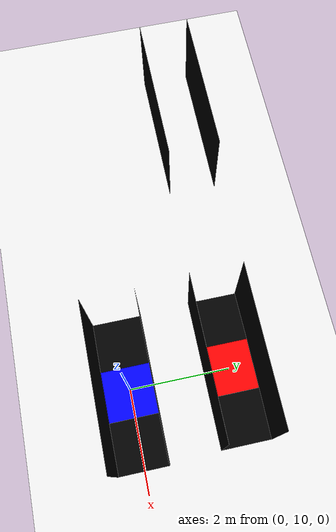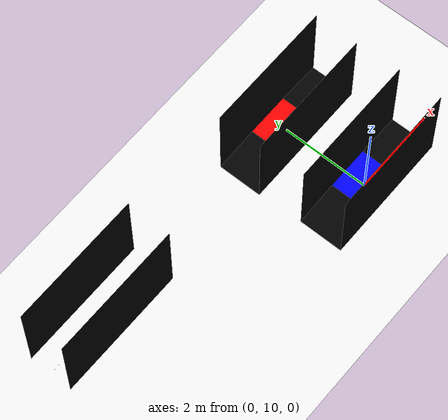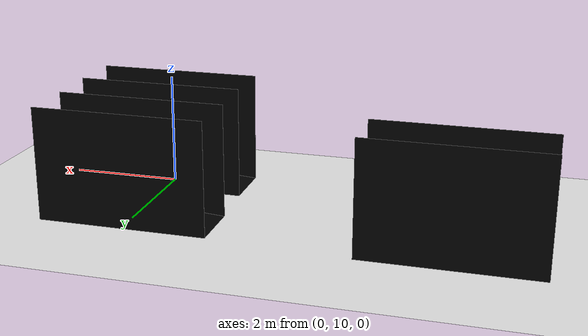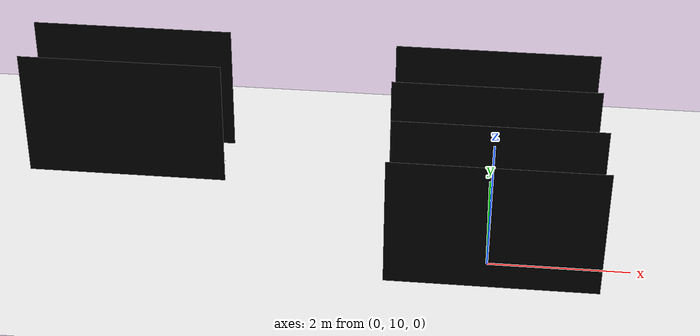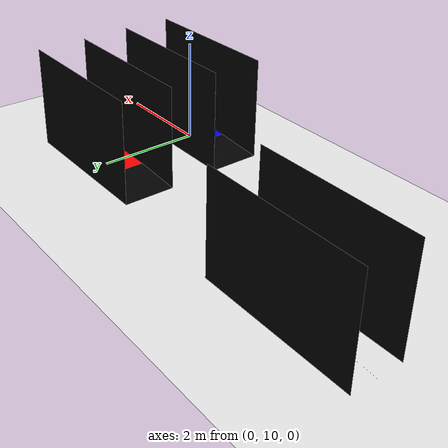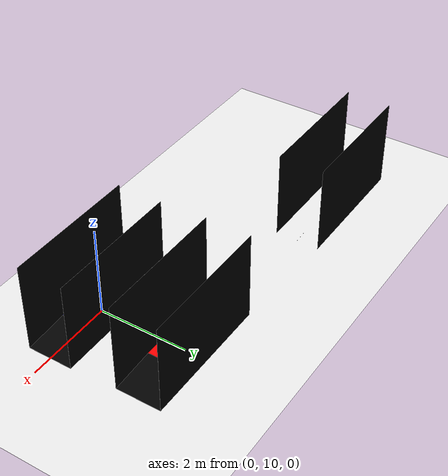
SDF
<sdf version="1.7">
 <world name="default">
  <model name="ground_plane">
   <static>1</static>
   <link name="link">
    <collision name="collision">
     <geometry><plane><normal>0 0 1</normal><size>100 100</size></plane></geometry>
     <surface>
      <contact><collide_bitmask>65535</collide_bitmask></contact>
      <friction><ode><mu>100</mu><mu2>50</mu2></ode></friction>
     </surface>
    </collision>
    <visual name="visual">
     <cast_shadows>0</cast_shadows>
     <geometry><plane><normal>0 0 1</normal><size>100 100</size></plane></geometry>
     <material>
      <script><uri>file://media/materials/scripts/gazebo.material</uri><name>Gazebo/WhiteColor</name></script>
     </material>
    </visual>
   </link>
  </model>
  <model name="icy_ramp">
   <static>1</static>
   <pose>0.062511 9.98815 0 0 -0 0</pose>
   <link name="left_side">
    <pose>0 -0.5 1 0 -0 0</pose>
    <collision name="collision">
     <geometry><box><size>3 0.001 2</size></box></geometry>
     <surface>
      <friction>
       <ode><mu>0.05</mu><mu2>0.05</mu2><fdir1>0 0 0</fdir1><slip1>0</slip1><slip2>0</slip2></ode>
      </friction>
     </surface>
     <material><script><name>IceMaterial</name></script></material>
    </collision>
    <visual name="visual">
     <cast_shadows>0</cast_shadows>
     <geometry><box><size>3 0.001 2</size></box></geometry>
     <material>
      <ambient>0 0 0 1</ambient>
      <diffuse>0 0 0 1</diffuse>
      <specular>0 0 0 1</specular>
      <emissive>0 0 0 1</emissive>
     </material>
    </visual>
   </link>
   <link name="right_side">
    <pose>0 0.5 1 0 -0 0</pose>
    <collision name="collision">
     <geometry><box><size>3 0.001 2</size></box></geometry>
     <surface>
      <friction>
       <ode><mu>0.05</mu><mu2>0.05</mu2><fdir1>0 0 0</fdir1><slip1>0</slip1><slip2>0</slip2></ode>
      </friction>
     </surface>
     <material><script><name>IceMaterial</name></script></material>
    </collision>
    <visual name="visual">
     <cast_shadows>0</cast_shadows>
     <geometry><box><size>3 0.001 2</size></box></geometry>
     <material>
      <ambient>0 0 0 1</ambient>
      <diffuse>0 0 0 1</diffuse>
      <specular>0 0 0 1</specular>
      <emissive>0 0 0 1</emissive>
     </material>
    </visual>
   </link>
   <link name="flat_plane">
    <pose>0 0 0.069756 0 -0 0</pose>
    <collision name="collision">
     <geometry><box><size>1 1 0.001</size></box></geometry>
     <surface>
      <friction>
       <ode><mu>0.05</mu><mu2>0.05</mu2><fdir1>0 0 0</fdir1><slip1>0</slip1><slip2>0</slip2></ode>
      </friction>
     </surface>
     <material><script><name>IceMaterial</name></script></material>
    </collision>
    <visual name="visual">
     <cast_shadows>0</cast_shadows>
     <geometry><box><size>1 1 0.001</size></box></geometry>
     <material>
      <ambient>0 0 1 1</ambient>
      <diffuse>0 0 1 1</diffuse>
      <specular>0 0 1 1</specular>
      <emissive>0 0 1 1</emissive>
     </material>
    </visual>
   </link>
   <link name="upward_slope">
    <pose>-0.998409 0 0.034878 0 -0.069813 0</pose>
    <collision name="collision">
     <geometry><box><size>1 1 0.001</size></box></geometry>
     <surface>
      <friction>
       <ode><mu>0.05</mu><mu2>0.05</mu2><fdir1>0 0 0</fdir1><slip1>0</slip1><slip2>0</slip2></ode>
      </friction>
     </surface>
     <material><script><name>IceMaterial</name></script></material>
    </collision>
    <visual name="visual">
     <cast_shadows>0</cast_shadows>
     <geometry><box><size>1 1 0.001</size></box></geometry>
     <material>
      <ambient>0 0 0 1</ambient>
      <diffuse>0 0 0 1</diffuse>
      <specular>0 0 0 1</specular>
      <emissive>0 0 0 1</emissive>
     </material>
    </visual>
   </link>
   <link name="downward_slope">
    <pose>0.998409 0 0.034878 0 0.069813 0</pose>
    <collision name="collision">
     <geometry><box><size>1 1 0.001</size></box></geometry>
     <surface>
      <friction>
       <ode><mu>0.05</mu><mu2>0.05</mu2><fdir1>0 0 0</fdir1><slip1>0</slip1><slip2>0</slip2></ode>
      </friction>
     </surface>
     <material><script><name>IceMaterial</name></script></material>
    </collision>
    <visual name="visual">
     <cast_shadows>0</cast_shadows>
     <geometry><box><size>1 1 0.001</size></box></geometry>
     <material>
      <ambient>0 0 0 1</ambient>
      <diffuse>0 0 0 1</diffuse>
      <specular>0 0 0 1</specular>
      <emissive>0 0 0 1</emissive>
     </material>
    </visual>
   </link>
  </model>
  <model name="dry_ramp">
   <static>1</static>
   <pose>0 12 0 0 -0 0</pose>
   <link name="left_side">
    <pose>0 -0.5 1 0 -0 0</pose>
    <collision name="collision">
     <geometry><box><size>3 0.001 2</size></box></geometry>
     <surface>
      <friction>
       <ode><mu>0.05</mu><mu2>0.05</mu2><fdir1>0 0 0</fdir1><slip1>0</slip1><slip2>0</slip2></ode>
      </friction>
     </surface>
     <material><script><name>IceMaterial</name></script></material>
    </collision>
    <visual name="visual">
     <cast_shadows>0</cast_shadows>
     <geometry><box><size>3 0.001 2</size></box></geometry>
     <material>
      <ambient>0 0 0 1</ambient>
      <diffuse>0 0 0 1</diffuse>
      <specular>0 0 0 1</specular>
      <emissive>0 0 0 1</emissive>
     </material>
    </visual>
   </link>
   <link name="right_side">
    <pose>0 0.5 1 0 -0 0</pose>
    <collision name="collision">
     <geometry><box><size>3 0.001 2</size></box></geometry>
     <surface>
      <friction>
       <ode><mu>0.05</mu><mu2>0.05</mu2><fdir1>0 0 0</fdir1><slip1>0</slip1><slip2>0</slip2></ode>
      </friction>
     </surface>
     <material><script><name>IceMaterial</name></script></material>
    </collision>
    <visual name="visual">
     <cast_shadows>0</cast_shadows>
     <geometry><box><size>3 0.001 2</size></box></geometry>
     <material>
      <ambient>0 0 0 1</ambient>
      <diffuse>0 0 0 1</diffuse>
      <specular>0 0 0 1</specular>
      <emissive>0 0 0 1</emissive>
     </material>
    </visual>
   </link>
   <link name="flat_plane">
    <pose>0 0 0.069756 0 -0 0</pose>
    <collision name="collision">
     <geometry><box><size>1 1 0.001</size></box></geometry>
     <material><script><name>IceMaterial</name></script></material>
    </collision>
    <visual name="visual">
     <cast_shadows>0</cast_shadows>
     <geometry><box><size>1 1 0.001</size></box></geometry>
     <material>
      <ambient>1 0 0 1</ambient>
      <diffuse>1 0 0 1</diffuse>
      <specular>1 0 0 1</specular>
      <emissive>1 0 0 1</emissive>
     </material>
    </visual>
   </link>
   <link name="upward_slope">
    <pose>-0.998409 0 0.034878 0 -0.069813 0</pose>
    <collision name="collision">
     <geometry><box><size>1 1 0.001</size></box></geometry>
     <material><script><name>IceMaterial</name></script></material>
    </collision>
    <visual name="visual">
     <cast_shadows>0</cast_shadows>
     <geometry><box><size>1 1 0.001</size></box></geometry>
     <material>
      <ambient>0 0 0 1</ambient>
      <diffuse>0 0 0 1</diffuse>
      <specular>0 0 0 1</specular>
      <emissive>0 0 0 1</emissive>
     </material>
    </visual>
   </link>
   <link name="downward_slope">
    <pose>0.998409 0 0.034878 0 0.069813 0</pose>
    <collision name="collision">
     <geometry><box><size>1 1 0.001</size></box></geometry>
     <material><script><name>IceMaterial</name></script></material>
    </collision>
    <visual name="visual">
     <cast_shadows>0</cast_shadows>
     <geometry><box><size>1 1 0.001</size></box></geometry>
     <material>
      <ambient>0 0 0 1</ambient>
      <diffuse>0 0 0 1</diffuse>
      <specular>0 0 0 1</specular>
      <emissive>0 0 0 1</emissive>
     </material>
    </visual>
   </link>
  </model>
  <model name="icy_ramp_clone_5">
   <static>1</static>
   <pose>-5.49151 12.147 0 0 -0 0</pose>
   <link name="left_side">
    <pose>0 -0.5 1 0 -0 0</pose>
    <collision name="collision">
     <geometry><box><size>3 0 2</size></box></geometry>
     <surface>
      <friction>
       <ode><mu>0.05</mu><mu2>0.05</mu2><fdir1>0 0 0</fdir1><slip1>0</slip1><slip2>0</slip2></ode>
      </friction>
     </surface>
     <material><script><name>IceMaterial</name></script></material>
    </collision>
    <visual name="visual">
     <cast_shadows>0</cast_shadows>
     <geometry><box><size>3 0 2</size></box></geometry>
     <material>
      <ambient>0 0 0 1</ambient>
      <diffuse>0 0 0 1</diffuse>
      <specular>0 0 0 1</specular>
      <emissive>0 0 0 1</emissive>
     </material>
    </visual>
   </link>
   <link name="right_side">
    <pose>0 0.5 1 0 -0 0</pose>
    <collision name="collision">
     <geometry><box><size>3 0 2</size></box></geometry>
     <surface>
      <friction>
       <ode><mu>0.05</mu><mu2>0.05</mu2><fdir1>0 0 0</fdir1><slip1>0</slip1><slip2>0</slip2></ode>
      </friction>
     </surface>
     <material><script><name>IceMaterial</name></script></material>
    </collision>
    <visual name="visual">
     <cast_shadows>0</cast_shadows>
     <geometry><box><size>3 0 2</size></box></geometry>
     <material>
      <ambient>0 0 0 1</ambient>
      <diffuse>0 0 0 1</diffuse>
      <specular>0 0 0 1</specular>
      <emissive>0 0 0 1</emissive>
     </material>
    </visual>
   </link>
   <link name="flat_plane">
    <pose>0 0 0.069756 0 -0 0</pose>
    <collision name="collision">
     <geometry><box><size>1 0 0.001</size></box></geometry>
     <surface>
      <friction>
       <ode><mu>0.05</mu><mu2>0.05</mu2><fdir1>0 0 0</fdir1><slip1>0</slip1><slip2>0</slip2></ode>
      </friction>
     </surface>
     <material><script><name>IceMaterial</name></script></material>
    </collision>
    <visual name="visual">
     <cast_shadows>0</cast_shadows>
     <geometry><box><size>1 0 0.001</size></box></geometry>
     <material>
      <ambient>0 0 1 1</ambient>
      <diffuse>0 0 1 1</diffuse>
      <specular>0 0 1 1</specular>
      <emissive>0 0 1 1</emissive>
     </material>
    </visual>
   </link>
   <link name="upward_slope">
    <pose>-0.998409 0 0.034878 0 -0.069813 0</pose>
    <collision name="collision">
     <geometry><box><size>1 0 0.001</size></box></geometry>
     <surface>
      <friction>
       <ode><mu>0.05</mu><mu2>0.05</mu2><fdir1>0 0 0</fdir1><slip1>0</slip1><slip2>0</slip2></ode>
      </friction>
     </surface>
     <material><script><name>IceMaterial</name></script></material>
    </collision>
    <visual name="visual">
     <cast_shadows>0</cast_shadows>
     <geometry><box><size>1 0 0.001</size></box></geometry>
     <material>
      <ambient>0 0 0 1</ambient>
      <diffuse>0 0 0 1</diffuse>
      <specular>0 0 0 1</specular>
      <emissive>0 0 0 1</emissive>
     </material>
    </visual>
   </link>
   <link name="downward_slope">
    <pose>0.998409 0 0.034878 0 0.069813 0</pose>
    <collision name="collision">
     <geometry><box><size>1 0 0.001</size></box></geometry>
     <surface>
      <friction>
       <ode><mu>0.05</mu><mu2>0.05</mu2><fdir1>0 0 0</fdir1><slip1>0</slip1><slip2>0</slip2></ode>
      </friction>
     </surface>
     <material><script><name>IceMaterial</name></script></material>
    </collision>
    <visual name="visual">
     <cast_shadows>0</cast_shadows>
     <geometry><box><size>1 0 0.001</size></box></geometry>
     <material>
      <ambient>0 0 0 1</ambient>
      <diffuse>0 0 0 1</diffuse>
      <specular>0 0 0 1</specular>
      <emissive>0 0 0 1</emissive>
     </material>
    </visual>
   </link>
  </model>
 </world>
</sdf>
